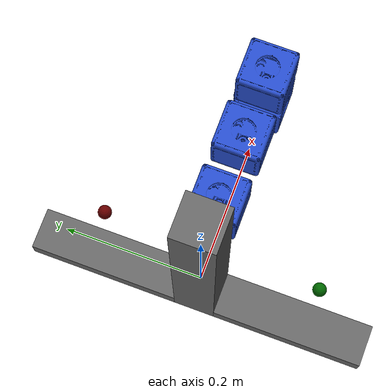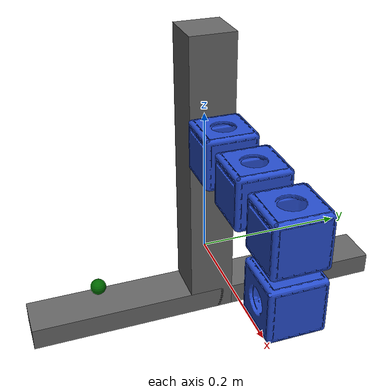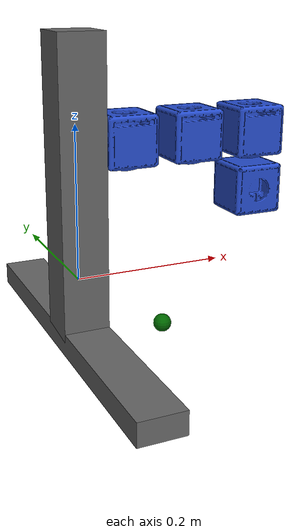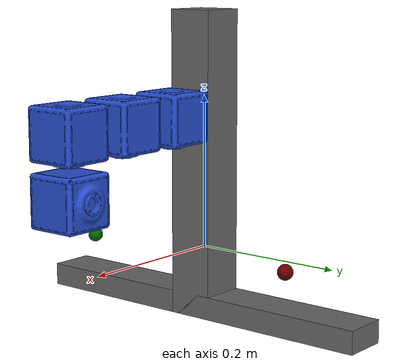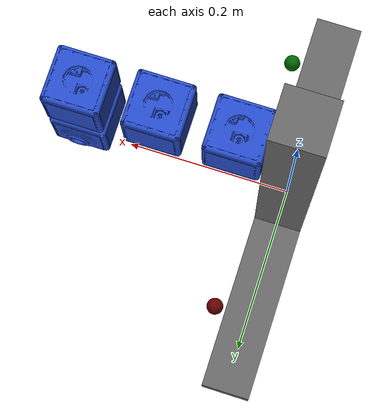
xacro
<?xml version="1.0"?>
<robot xmlns:xacro="http://ros.org/wiki/xacro" name="body">

  <xacro:property name="c_flange" value="90" />
  <xacro:property name="scale_f" value="1000" />
  <xacro:property name="cube_size" value="66" />
  <xacro:property name="arm_height" value="0.3" />
  <xacro:property name="holder_height" value="0.089" />

  <xacro:include filename="$(find vsa_3dof_arm_description)/urdf/qb/body_defs.urdf.xacro"/>
  <xacro:include filename="$(find vsa_3dof_arm_description)/urdf/materials.urdf.xacro"/>

  <link name="base_link">
    <visual>
      <origin xyz="0 0 0.2" rpy="0 0 0"/>
      <geometry>
        <box size="0.060 0.060 0.4"/>
      </geometry>
      <material name="Gray">
      	<color rgba = "0.4 0.4 0.4 1" />
      </material>
    </visual>
	<collision>
      		<origin xyz="0 0 0.2" rpy="0 0 0"/>
      		<geometry>
        	<box size="0.06 0.06 0.4"/>
     		 </geometry>
    	</collision>
  </link>

  <link name="horizontal_bar_link">
    <visual>
      <origin xyz="0 0 0.015" rpy="0 0 0"/>
      <geometry>
        <box size="0.06 0.5 0.03"/>
      </geometry>
      <material name="Gray">
      	<color rgba = "0.4 0.4 0.4 1" />
      </material>
    </visual>
	<collision>
      		<origin xyz="0 0 0.015" rpy="0 0 0"/>
      		<geometry>
        	<box size="0.06 0.5 0.03"/>
     		 </geometry>
    	</collision>
  </link>

  <joint name="horizontal_bar_joint" type="fixed" >
      <origin xyz="0 0 0" rpy="0 0 0"/>
      <parent link="base_link" />
      <child link="horizontal_bar_link" />
  </joint>

  <!-- Left holder -->
  <link name="left_holder_link">
    <visual>
      <origin xyz="0 0 0" rpy="0 0 0"/>
      <geometry>
        <sphere radius="0.01"/>
      </geometry>
      <material name="Green">
      	<color rgba = "0 0.4 0 1" />
      </material>
    </visual>
	<collision>
      	    <origin xyz="0 0 0" rpy="0 0 0"/>
            <geometry>
              <sphere radius="0.01"/>
            </geometry>
    	</collision>
  </link>

  <joint name="left_holder_joint" type="fixed" >
      <origin xyz="${0.0415} -0.16 ${holder_height}" rpy="${pi} 0 ${-pi/2}"/>
      <parent link="base_link" />
      <child link="left_holder_link" />
  </joint>

  <!-- Right holder -->
  <link name="right_holder_link">
    <visual>
      <origin xyz="0 0 0" rpy="0 0 0"/>
      <geometry>
        <sphere radius="0.01"/>
      </geometry>
      <material name="Red">
      	<color rgba = "0.4 0 0 1" />
      </material>
    </visual>
	<collision>
      	    <origin xyz="0 0 0" rpy="0 0 0"/>
            <geometry>
              <sphere radius="0.01"/>
            </geometry>
    	</collision>
  </link>

  <joint name="right_holder_joint" type="fixed" >
      <origin xyz="${0.0415} 0.16 ${holder_height}" rpy="${pi} 0 ${pi/2}"/>
      <parent link="base_link" />
      <child link="right_holder_link" />
  </joint>

  <!--  VSA 3 DOF + gripper arm -->

  <link name="arm_mounting_frame"/>
  <joint name="arm_mounting_joint" type="fixed" >
      <origin xyz="${0.044 + 0.0535 - cube_size/2/scale_f} 0 ${- cube_size/2/scale_f + arm_height}" rpy="${pi} 0 0"/>
      <parent link="base_link" />
      <child link="arm_mounting_frame" />
  </joint>

  <xacro:vsa_3dof_arm parent="arm_mounting_frame" name="arm"/>

  <!-- Adding a link at the only height the arm can reach -->
  <link name="base_link_zero"/>
  <joint name="base_link_zero_joint" type="fixed">
    <origin xyz="0 0 ${-holder_height}" rpy="0 0 0"/>
      <parent link="base_link_zero" />
      <child link="base_link" />
  </joint>

</robot>

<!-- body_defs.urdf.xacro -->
<robot xmlns:xacro="http://ros.org/wiki/xacro">

<!-- constants -->
	<!--FIXME: Add different joint limits for each cube -->
	<xacro:property name="damping_all" value="1" />
	<xacro:property name="pi" value="3.1415926535897931" />
	<xacro:property name="low_b" value="-140" />
	<xacro:property name="up_b" value="140" />
	<xacro:property name="velocity" value="0.005" />
	<xacro:property name="effort" value="100" />
	<xacro:property name="one_flange" value="78" />
	<xacro:property name="two_flanges" value="92" />
	<xacro:property name="c_flange" value="90" />
	<xacro:property name="cube_size" value="66" />
	<xacro:property name="scale_f" value="1000" />
	<xacro:property name="cube_mass" value="0.260" />
	<xacro:property name="flange_c_mass" value="0.030" />
	<xacro:property name="flange_u_mass" value="0.052" />
	<xacro:property name="hand_mass" value="0.384" />
	<xacro:property name="hand_size" value="89" />
	<xacro:property name="hand_height" value="145" />
	<xacro:property name="hand_width" value="15" />
	<xacro:property name="hand_length" value="95" />
	<xacro:property name="thumb_height" value="60" />
	<xacro:property name="thumb_width" value="20" />
	<xacro:property name="thumb_length" value="20" />
	<xacro:property name="height" value="36" />
	<xacro:property name="length" value="64" />
	<xacro:property name="width" value="64" />

<!-- Definition of the QB cube -->

	<xacro:macro name="cube" params="parent name position orientation low_limit high_limit" >

		<joint name="${name}_dummy_joint" type="fixed" >
			<origin xyz="${position}" rpy="${orientation}" />
			<parent link="${parent}" />
			<child link="${name}_mesh_link" />
		</joint>
		<link name="${name}_mesh_link" >
			<visual>
				<origin xyz="0 0 0" rpy="0 0 0" />
				<geometry>
	            	<mesh filename="package://vsa_3dof_arm_description/meshes/qb/cube.stl" />
				</geometry>
			<material name="DLR/Blue" />
			</visual>
		    <collision>
		      <origin xyz="0 0 0" rpy="0 0 0" />
		      <geometry>
		        <box size="${cube_size/scale_f} ${cube_size/scale_f} ${cube_size/scale_f}" />
		      </geometry>
		    </collision>
		</link>

		<joint name="${name}_joint" type="revolute" >
			<origin xyz="0 0 0" rpy="0 0 0" />
			<parent link="${name}_mesh_link" />
			<child link="${name}_link" />
			<axis xyz="0 0 1" />
			<dynamics damping="${damping_all}" />
			<limit lower="${low_limit * pi / 180}" upper="${high_limit * pi / 180}" effort="${effort}" velocity="${velocity}"/>
		</joint>

		<link name="${name}_link">
			<inertial>
					<mass value="${cube_mass + flange_c_mass}" />
					<inertia ixx="0.00020" ixy="0.0" ixz="0.0" iyy="0.0002" iyz="0.0" izz="0.00018" />
			</inertial>
		</link>
	</xacro:macro>

<!-- Definiton of the 3DOF arm -->
	<xacro:macro name="vsa_3dof_arm" params="parent name" >
		<joint name="${name}_dummy_joint" type="fixed" >
			<parent link="${parent}" />
			<child link="${name}_dummy_link" />
		</joint>

		<link name="${name}_dummy_link"/>

		<xacro:cube parent="${name}_dummy_link" name="${name}_1"
                  position="0 0 0" orientation="0 0 0" low_limit="-107" high_limit="107" />

		<xacro:cube parent="${name}_1_link" name="${name}_2"
                  position="${c_flange/scale_f} 0 0" orientation="0 0 0" low_limit="-107" high_limit="107" />

		<xacro:cube parent="${name}_2_link" name="${name}_3"
                  position="${c_flange/scale_f} 0 0" orientation="0 0 0"  low_limit="-180" high_limit="180"/>

		<xacro:cube parent="${name}_3_link" name="${name}_4"
                  position="0 0 ${one_flange/scale_f} " orientation="${pi / 2} 0 0"  low_limit="-15" high_limit="90"/>

                <link name="${name}_fixed_finger"/>
                <joint name="${name}_fixed_finger_joint" type="fixed" >
                    <origin xyz="0 0.1 0" rpy="${- pi/2} 0  0"/>
                    <parent link="${name}_4_mesh_link" />
                    <child link="${name}_fixed_finger" />
                </joint>

                <link name="${name}_rotating_finger"/>
                <joint name="${name}_rotating_finger_joint" type="fixed" >
                    <origin xyz="${0.1 * 0.7071} ${0.1 * 0.7071} 0" rpy="${- pi/2} 0  ${- pi/4}"/>
                    <parent link="${name}_4_link" />
                    <child link="${name}_rotating_finger" />
                </joint>

	</xacro:macro>

</robot>
